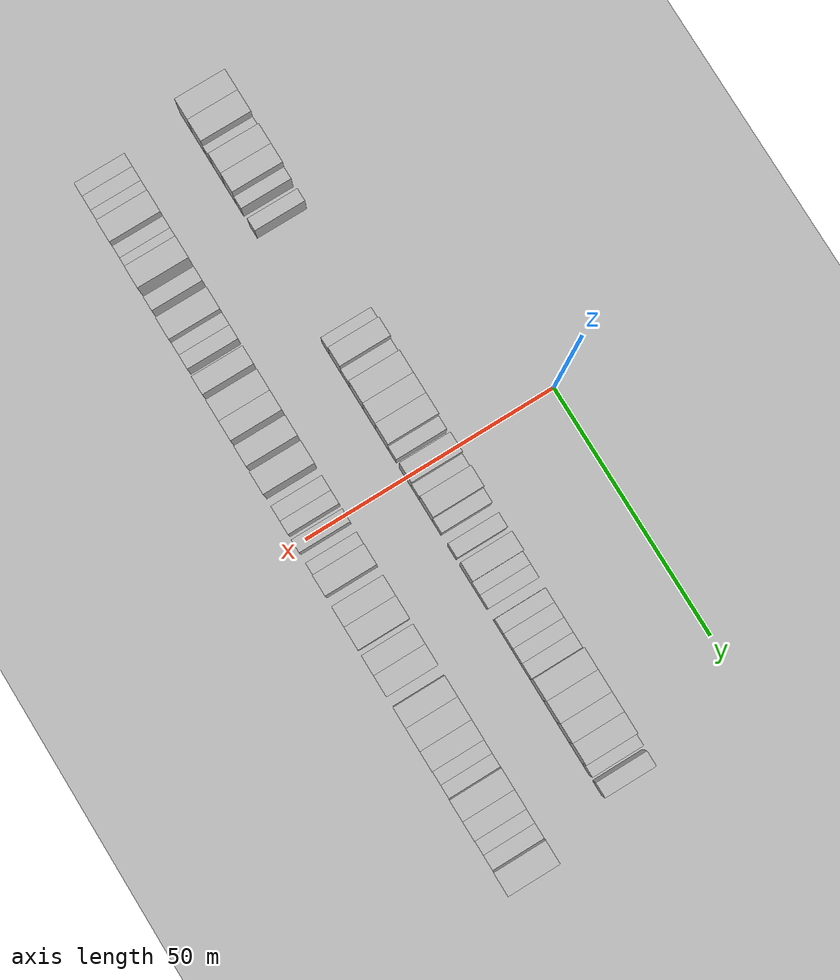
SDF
<sdf version="1.6">
 <world name="default">
  <include><name>ground_plane_1</name><uri>model://HANNAS_ground_plane</uri></include>
  <include>
   <name>ground_plane_2</name>
   <uri>model://HANNAS_ground_plane</uri>
   <pose>100 0 0  0 0 0</pose>
  </include>
  <model name="building_33">
   <static>1</static>
   <pose>25.0000 -72.8409 0 0.000000 0.000000 0.000000</pose>
   <link name="link">
    <pose>0 0 4.50 0 0 0</pose>
    <collision name="collision"><geometry><box><size>10.0000 4.2428 9.0000</size></box></geometry></collision>
    <visual name="visual">
     <cast_shadows>0</cast_shadows>
     <geometry><box><size>10.0000 4.2428 9.0000</size></box></geometry>
     <material>
      <script>
       <uri>model://HANNAS_wall/materials/scripts</uri>
       <uri>model://HANNAS_wall/materials/textures</uri>
       <name>vrc/HANNAS_wall</name>
      </script>
     </material>
    </visual>
   </link>
  </model>
  <model name="building_34">
   <static>1</static>
   <pose>25.0000 -68.4994 0 0.000000 0.000000 0.000000</pose>
   <link name="link">
    <pose>0 0 4.50 0 0 0</pose>
    <collision name="collision"><geometry><box><size>10.0000 4.4401 9.0000</size></box></geometry></collision>
    <visual name="visual">
     <cast_shadows>0</cast_shadows>
     <geometry><box><size>10.0000 4.4401 9.0000</size></box></geometry>
     <material>
      <script>
       <uri>model://HANNAS_wall/materials/scripts</uri>
       <uri>model://HANNAS_wall/materials/textures</uri>
       <name>vrc/HANNAS_wall</name>
      </script>
     </material>
    </visual>
   </link>
  </model>
  <model name="building_35">
   <static>1</static>
   <pose>25.0000 -65.0476 0 0.000000 0.000000 0.000000</pose>
   <link name="link">
    <pose>0 0 3.00 0 0 0</pose>
    <collision name="collision"><geometry><box><size>10.0000 2.4635 6.0000</size></box></geometry></collision>
    <visual name="visual">
     <cast_shadows>0</cast_shadows>
     <geometry><box><size>10.0000 2.4635 6.0000</size></box></geometry>
     <material>
      <script>
       <uri>model://HANNAS_wall/materials/scripts</uri>
       <uri>model://HANNAS_wall/materials/textures</uri>
       <name>vrc/HANNAS_wall</name>
      </script>
     </material>
    </visual>
   </link>
  </model>
  <model name="building_36">
   <static>1</static>
   <pose>25.0000 -61.7955 0 0.000000 0.000000 0.000000</pose>
   <link name="link">
    <pose>0 0 4.50 0 0 0</pose>
    <collision name="collision"><geometry><box><size>10.0000 4.0407 9.0000</size></box></geometry></collision>
    <visual name="visual">
     <cast_shadows>0</cast_shadows>
     <geometry><box><size>10.0000 4.0407 9.0000</size></box></geometry>
     <material>
      <script>
       <uri>model://HANNAS_wall/materials/scripts</uri>
       <uri>model://HANNAS_wall/materials/textures</uri>
       <name>vrc/HANNAS_wall</name>
      </script>
     </material>
    </visual>
   </link>
  </model>
  <model name="building_37">
   <static>1</static>
   <pose>25.0000 -57.8602 0 0.000000 0.000000 0.000000</pose>
   <link name="link">
    <pose>0 0 4.50 0 0 0</pose>
    <collision name="collision"><geometry><box><size>10.0000 3.8299 9.0000</size></box></geometry></collision>
    <visual name="visual">
     <cast_shadows>0</cast_shadows>
     <geometry><box><size>10.0000 3.8299 9.0000</size></box></geometry>
     <material>
      <script>
       <uri>model://HANNAS_wall/materials/scripts</uri>
       <uri>model://HANNAS_wall/materials/textures</uri>
       <name>vrc/HANNAS_wall</name>
      </script>
     </material>
    </visual>
   </link>
  </model>
  <model name="building_38">
   <static>1</static>
   <pose>25.0000 -54.7320 0 0.000000 0.000000 0.000000</pose>
   <link name="link">
    <pose>0 0 3.00 0 0 0</pose>
    <collision name="collision"><geometry><box><size>10.0000 2.4264 6.0000</size></box></geometry></collision>
    <visual name="visual">
     <cast_shadows>0</cast_shadows>
     <geometry><box><size>10.0000 2.4264 6.0000</size></box></geometry>
     <material>
      <script>
       <uri>model://HANNAS_wall/materials/scripts</uri>
       <uri>model://HANNAS_wall/materials/textures</uri>
       <name>vrc/HANNAS_wall</name>
      </script>
     </material>
    </visual>
   </link>
  </model>
  <model name="building_39">
   <static>1</static>
   <pose>25.0000 -50.2527 0 0.000000 0.000000 0.000000</pose>
   <link name="link">
    <pose>0 0 3.00 0 0 0</pose>
    <collision name="collision"><geometry><box><size>10.0000 2.5323 6.0000</size></box></geometry></collision>
    <visual name="visual">
     <cast_shadows>0</cast_shadows>
     <geometry><box><size>10.0000 2.5323 6.0000</size></box></geometry>
     <material>
      <script>
       <uri>model://HANNAS_wall/materials/scripts</uri>
       <uri>model://HANNAS_wall/materials/textures</uri>
       <name>vrc/HANNAS_wall</name>
      </script>
     </material>
    </visual>
   </link>
  </model>
  <model name="building_40">
   <static>1</static>
   <pose>25.0000 -26.1043 0 0.000000 0.000000 0.000000</pose>
   <link name="link">
    <pose>0 0 3.00 0 0 0</pose>
    <collision name="collision"><geometry><box><size>10.0000 2.5882 6.0000</size></box></geometry></collision>
    <visual name="visual">
     <cast_shadows>0</cast_shadows>
     <geometry><box><size>10.0000 2.5882 6.0000</size></box></geometry>
     <material>
      <script>
       <uri>model://HANNAS_wall/materials/scripts</uri>
       <uri>model://HANNAS_wall/materials/textures</uri>
       <name>vrc/HANNAS_wall</name>
      </script>
     </material>
    </visual>
   </link>
  </model>
  <model name="building_41">
   <static>1</static>
   <pose>25.0000 -22.9158 0 0.000000 0.000000 0.000000</pose>
   <link name="link">
    <pose>0 0 4.50 0 0 0</pose>
    <collision name="collision"><geometry><box><size>10.0000 3.7887 9.0000</size></box></geometry></collision>
    <visual name="visual">
     <cast_shadows>0</cast_shadows>
     <geometry><box><size>10.0000 3.7887 9.0000</size></box></geometry>
     <material>
      <script>
       <uri>model://HANNAS_wall/materials/scripts</uri>
       <uri>model://HANNAS_wall/materials/textures</uri>
       <name>vrc/HANNAS_wall</name>
      </script>
     </material>
    </visual>
   </link>
  </model>
  <model name="building_42">
   <static>1</static>
   <pose>25.0000 -19.5918 0 0.000000 0.000000 0.000000</pose>
   <link name="link">
    <pose>0 0 3.00 0 0 0</pose>
    <collision name="collision"><geometry><box><size>10.0000 2.8595 6.0000</size></box></geometry></collision>
    <visual name="visual">
     <cast_shadows>0</cast_shadows>
     <geometry><box><size>10.0000 2.8595 6.0000</size></box></geometry>
     <material>
      <script>
       <uri>model://HANNAS_wall/materials/scripts</uri>
       <uri>model://HANNAS_wall/materials/textures</uri>
       <name>vrc/HANNAS_wall</name>
      </script>
     </material>
    </visual>
   </link>
  </model>
  <model name="building_43">
   <static>1</static>
   <pose>25.0000 -15.9503 0 0.000000 0.000000 0.000000</pose>
   <link name="link">
    <pose>0 0 4.50 0 0 0</pose>
    <collision name="collision"><geometry><box><size>10.0000 4.4235 9.0000</size></box></geometry></collision>
    <visual name="visual">
     <cast_shadows>0</cast_shadows>
     <geometry><box><size>10.0000 4.4235 9.0000</size></box></geometry>
     <material>
      <script>
       <uri>model://HANNAS_wall/materials/scripts</uri>
       <uri>model://HANNAS_wall/materials/textures</uri>
       <name>vrc/HANNAS_wall</name>
      </script>
     </material>
    </visual>
   </link>
  </model>
  <model name="building_44">
   <static>1</static>
   <pose>25.0000 -11.7266 0 0.000000 0.000000 0.000000</pose>
   <link name="link">
    <pose>0 0 4.50 0 0 0</pose>
    <collision name="collision"><geometry><box><size>10.0000 4.0238 9.0000</size></box></geometry></collision>
    <visual name="visual">
     <cast_shadows>0</cast_shadows>
     <geometry><box><size>10.0000 4.0238 9.0000</size></box></geometry>
     <material>
      <script>
       <uri>model://HANNAS_wall/materials/scripts</uri>
       <uri>model://HANNAS_wall/materials/textures</uri>
       <name>vrc/HANNAS_wall</name>
      </script>
     </material>
    </visual>
   </link>
  </model>
  <model name="building_45">
   <static>1</static>
   <pose>25.0000 -7.6589 0 0.000000 0.000000 0.000000</pose>
   <link name="link">
    <pose>0 0 4.50 0 0 0</pose>
    <collision name="collision"><geometry><box><size>10.0000 4.1117 9.0000</size></box></geometry></collision>
    <visual name="visual">
     <cast_shadows>0</cast_shadows>
     <geometry><box><size>10.0000 4.1117 9.0000</size></box></geometry>
     <material>
      <script>
       <uri>model://HANNAS_wall/materials/scripts</uri>
       <uri>model://HANNAS_wall/materials/textures</uri>
       <name>vrc/HANNAS_wall</name>
      </script>
     </material>
    </visual>
   </link>
  </model>
  <model name="building_46">
   <static>1</static>
   <pose>25.0000 -4.2922 0 0.000000 0.000000 0.000000</pose>
   <link name="link">
    <pose>0 0 3.00 0 0 0</pose>
    <collision name="collision"><geometry><box><size>10.0000 2.6216 6.0000</size></box></geometry></collision>
    <visual name="visual">
     <cast_shadows>0</cast_shadows>
     <geometry><box><size>10.0000 2.6216 6.0000</size></box></geometry>
     <material>
      <script>
       <uri>model://HANNAS_wall/materials/scripts</uri>
       <uri>model://HANNAS_wall/materials/textures</uri>
       <name>vrc/HANNAS_wall</name>
      </script>
     </material>
    </visual>
   </link>
  </model>
  <model name="building_47">
   <static>1</static>
   <pose>25.0000 -0.0352 0 0.000000 0.000000 0.000000</pose>
   <link name="link">
    <pose>0 0 4.50 0 0 0</pose>
    <collision name="collision"><geometry><box><size>10.0000 3.8925 9.0000</size></box></geometry></collision>
    <visual name="visual">
     <cast_shadows>0</cast_shadows>
     <geometry><box><size>10.0000 3.8925 9.0000</size></box></geometry>
     <material>
      <script>
       <uri>model://HANNAS_wall/materials/scripts</uri>
       <uri>model://HANNAS_wall/materials/textures</uri>
       <name>vrc/HANNAS_wall</name>
      </script>
     </material>
    </visual>
   </link>
  </model>
  <model name="building_48">
   <static>1</static>
   <pose>25.0000 3.2444 0 0.000000 0.000000 0.000000</pose>
   <link name="link">
    <pose>0 0 3.00 0 0 0</pose>
    <collision name="collision"><geometry><box><size>10.0000 2.6667 6.0000</size></box></geometry></collision>
    <visual name="visual">
     <cast_shadows>0</cast_shadows>
     <geometry><box><size>10.0000 2.6667 6.0000</size></box></geometry>
     <material>
      <script>
       <uri>model://HANNAS_wall/materials/scripts</uri>
       <uri>model://HANNAS_wall/materials/textures</uri>
       <name>vrc/HANNAS_wall</name>
      </script>
     </material>
    </visual>
   </link>
  </model>
  <model name="building_49">
   <static>1</static>
   <pose>25.0000 6.6460 0 0.000000 0.000000 0.000000</pose>
   <link name="link">
    <pose>0 0 4.50 0 0 0</pose>
    <collision name="collision"><geometry><box><size>10.0000 4.1365 9.0000</size></box></geometry></collision>
    <visual name="visual">
     <cast_shadows>0</cast_shadows>
     <geometry><box><size>10.0000 4.1365 9.0000</size></box></geometry>
     <material>
      <script>
       <uri>model://HANNAS_wall/materials/scripts</uri>
       <uri>model://HANNAS_wall/materials/textures</uri>
       <name>vrc/HANNAS_wall</name>
      </script>
     </material>
    </visual>
   </link>
  </model>
  <model name="building_50">
   <static>1</static>
   <pose>25.0000 10.1322 0 0.000000 0.000000 0.000000</pose>
   <link name="link">
    <pose>0 0 3.00 0 0 0</pose>
    <collision name="collision"><geometry><box><size>10.0000 2.8359 6.0000</size></box></geometry></collision>
    <visual name="visual">
     <cast_shadows>0</cast_shadows>
     <geometry><box><size>10.0000 2.8359 6.0000</size></box></geometry>
     <material>
      <script>
       <uri>model://HANNAS_wall/materials/scripts</uri>
       <uri>model://HANNAS_wall/materials/textures</uri>
       <name>vrc/HANNAS_wall</name>
      </script>
     </material>
    </visual>
   </link>
  </model>
  <model name="building_51">
   <static>1</static>
   <pose>25.0000 14.9965 0 0.000000 0.000000 0.000000</pose>
   <link name="link">
    <pose>0 0 3.00 0 0 0</pose>
    <collision name="collision"><geometry><box><size>10.0000 2.8928 6.0000</size></box></geometry></collision>
    <visual name="visual">
     <cast_shadows>0</cast_shadows>
     <geometry><box><size>10.0000 2.8928 6.0000</size></box></geometry>
     <material>
      <script>
       <uri>model://HANNAS_wall/materials/scripts</uri>
       <uri>model://HANNAS_wall/materials/textures</uri>
       <name>vrc/HANNAS_wall</name>
      </script>
     </material>
    </visual>
   </link>
  </model>
  <model name="building_52">
   <static>1</static>
   <pose>25.0000 19.3135 0 0.000000 0.000000 0.000000</pose>
   <link name="link">
    <pose>0 0 4.50 0 0 0</pose>
    <collision name="collision"><geometry><box><size>10.0000 3.7412 9.0000</size></box></geometry></collision>
    <visual name="visual">
     <cast_shadows>0</cast_shadows>
     <geometry><box><size>10.0000 3.7412 9.0000</size></box></geometry>
     <material>
      <script>
       <uri>model://HANNAS_wall/materials/scripts</uri>
       <uri>model://HANNAS_wall/materials/textures</uri>
       <name>vrc/HANNAS_wall</name>
      </script>
     </material>
    </visual>
   </link>
  </model>
  <model name="building_53">
   <static>1</static>
   <pose>25.0000 22.4335 0 0.000000 0.000000 0.000000</pose>
   <link name="link">
    <pose>0 0 3.00 0 0 0</pose>
    <collision name="collision"><geometry><box><size>10.0000 2.4987 6.0000</size></box></geometry></collision>
    <visual name="visual">
     <cast_shadows>0</cast_shadows>
     <geometry><box><size>10.0000 2.4987 6.0000</size></box></geometry>
     <material>
      <script>
       <uri>model://HANNAS_wall/materials/scripts</uri>
       <uri>model://HANNAS_wall/materials/textures</uri>
       <name>vrc/HANNAS_wall</name>
      </script>
     </material>
    </visual>
   </link>
  </model>
  <model name="building_54">
   <static>1</static>
   <pose>25.0000 25.0154 0 0.000000 0.000000 0.000000</pose>
   <link name="link">
    <pose>0 0 3.00 0 0 0</pose>
    <collision name="collision"><geometry><box><size>10.0000 2.6651 6.0000</size></box></geometry></collision>
    <visual name="visual">
     <cast_shadows>0</cast_shadows>
     <geometry><box><size>10.0000 2.6651 6.0000</size></box></geometry>
     <material>
      <script>
       <uri>model://HANNAS_wall/materials/scripts</uri>
       <uri>model://HANNAS_wall/materials/textures</uri>
       <name>vrc/HANNAS_wall</name>
      </script>
     </material>
    </visual>
   </link>
  </model>
  <model name="building_55">
   <static>1</static>
   <pose>25.0000 29.7597 0 0.000000 0.000000 0.000000</pose>
   <link name="link">
    <pose>0 0 3.00 0 0 0</pose>
    <collision name="collision"><geometry><box><size>10.0000 2.8235 6.0000</size></box></geometry></collision>
    <visual name="visual">
     <cast_shadows>0</cast_shadows>
     <geometry><box><size>10.0000 2.8235 6.0000</size></box></geometry>
     <material>
      <script>
       <uri>model://HANNAS_wall/materials/scripts</uri>
       <uri>model://HANNAS_wall/materials/textures</uri>
       <name>vrc/HANNAS_wall</name>
      </script>
     </material>
    </visual>
   </link>
  </model>
  <model name="building_56">
   <static>1</static>
   <pose>25.0000 32.6455 0 0.000000 0.000000 0.000000</pose>
   <link name="link">
    <pose>0 0 3.00 0 0 0</pose>
    <collision name="collision"><geometry><box><size>10.0000 2.9481 6.0000</size></box></geometry></collision>
    <visual name="visual">
     <cast_shadows>0</cast_shadows>
     <geometry><box><size>10.0000 2.9481 6.0000</size></box></geometry>
     <material>
      <script>
       <uri>model://HANNAS_wall/materials/scripts</uri>
       <uri>model://HANNAS_wall/materials/textures</uri>
       <name>vrc/HANNAS_wall</name>
      </script>
     </material>
    </visual>
   </link>
  </model>
  <model name="building_57">
   <static>1</static>
   <pose>25.0000 35.5581 0 0.000000 0.000000 0.000000</pose>
   <link name="link">
    <pose>0 0 3.00 0 0 0</pose>
    <collision name="collision"><geometry><box><size>10.0000 2.8771 6.0000</size></box></geometry></collision>
    <visual name="visual">
     <cast_shadows>0</cast_shadows>
     <geometry><box><size>10.0000 2.8771 6.0000</size></box></geometry>
     <material>
      <script>
       <uri>model://HANNAS_wall/materials/scripts</uri>
       <uri>model://HANNAS_wall/materials/textures</uri>
       <name>vrc/HANNAS_wall</name>
      </script>
     </material>
    </visual>
   </link>
  </model>
  <model name="building_58">
   <static>1</static>
   <pose>25.0000 38.4874 0 0.000000 0.000000 0.000000</pose>
   <link name="link">
    <pose>0 0 3.00 0 0 0</pose>
    <collision name="collision"><geometry><box><size>10.0000 2.9816 6.0000</size></box></geometry></collision>
    <visual name="visual">
     <cast_shadows>0</cast_shadows>
     <geometry><box><size>10.0000 2.9816 6.0000</size></box></geometry>
     <material>
      <script>
       <uri>model://HANNAS_wall/materials/scripts</uri>
       <uri>model://HANNAS_wall/materials/textures</uri>
       <name>vrc/HANNAS_wall</name>
      </script>
     </material>
    </visual>
   </link>
  </model>
  <model name="building_59">
   <static>1</static>
   <pose>25.0000 42.0913 0 0.000000 0.000000 0.000000</pose>
   <link name="link">
    <pose>0 0 4.50 0 0 0</pose>
    <collision name="collision"><geometry><box><size>10.0000 4.2262 9.0000</size></box></geometry></collision>
    <visual name="visual">
     <cast_shadows>0</cast_shadows>
     <geometry><box><size>10.0000 4.2262 9.0000</size></box></geometry>
     <material>
      <script>
       <uri>model://HANNAS_wall/materials/scripts</uri>
       <uri>model://HANNAS_wall/materials/textures</uri>
       <name>vrc/HANNAS_wall</name>
      </script>
     </material>
    </visual>
   </link>
  </model>
  <model name="building_60">
   <static>1</static>
   <pose>25.0000 46.3436 0 0.000000 0.000000 0.000000</pose>
   <link name="link">
    <pose>0 0 4.50 0 0 0</pose>
    <collision name="collision"><geometry><box><size>10.0000 4.2783 9.0000</size></box></geometry></collision>
    <visual name="visual">
     <cast_shadows>0</cast_shadows>
     <geometry><box><size>10.0000 4.2783 9.0000</size></box></geometry>
     <material>
      <script>
       <uri>model://HANNAS_wall/materials/scripts</uri>
       <uri>model://HANNAS_wall/materials/textures</uri>
       <name>vrc/HANNAS_wall</name>
      </script>
     </material>
    </visual>
   </link>
  </model>
  <model name="building_61">
   <static>1</static>
   <pose>25.0000 50.3788 0 0.000000 0.000000 0.000000</pose>
   <link name="link">
    <pose>0 0 4.50 0 0 0</pose>
    <collision name="collision"><geometry><box><size>10.0000 3.7922 9.0000</size></box></geometry></collision>
    <visual name="visual">
     <cast_shadows>0</cast_shadows>
     <geometry><box><size>10.0000 3.7922 9.0000</size></box></geometry>
     <material>
      <script>
       <uri>model://HANNAS_wall/materials/scripts</uri>
       <uri>model://HANNAS_wall/materials/textures</uri>
       <name>vrc/HANNAS_wall</name>
      </script>
     </material>
    </visual>
   </link>
  </model>
  <model name="building_62">
   <static>1</static>
   <pose>25.0000 54.3548 0 0.000000 0.000000 0.000000</pose>
   <link name="link">
    <pose>0 0 4.50 0 0 0</pose>
    <collision name="collision"><geometry><box><size>10.0000 4.1597 9.0000</size></box></geometry></collision>
    <visual name="visual">
     <cast_shadows>0</cast_shadows>
     <geometry><box><size>10.0000 4.1597 9.0000</size></box></geometry>
     <material>
      <script>
       <uri>model://HANNAS_wall/materials/scripts</uri>
       <uri>model://HANNAS_wall/materials/textures</uri>
       <name>vrc/HANNAS_wall</name>
      </script>
     </material>
    </visual>
   </link>
  </model>
  <model name="building_63">
   <static>1</static>
   <pose>25.0000 57.6877 0 0.000000 0.000000 0.000000</pose>
   <link name="link">
    <pose>0 0 3.00 0 0 0</pose>
    <collision name="collision"><geometry><box><size>10.0000 2.5062 6.0000</size></box></geometry></collision>
    <visual name="visual">
     <cast_shadows>0</cast_shadows>
     <geometry><box><size>10.0000 2.5062 6.0000</size></box></geometry>
     <material>
      <script>
       <uri>model://HANNAS_wall/materials/scripts</uri>
       <uri>model://HANNAS_wall/materials/textures</uri>
       <name>vrc/HANNAS_wall</name>
      </script>
     </material>
    </visual>
   </link>
  </model>
  <model name="building_64">
   <static>1</static>
   <pose>25.0000 61.4078 0 0.000000 0.000000 0.000000</pose>
   <link name="link">
    <pose>0 0 3.00 0 0 0</pose>
    <collision name="collision"><geometry><box><size>10.0000 2.9340 6.0000</size></box></geometry></collision>
    <visual name="visual">
     <cast_shadows>0</cast_shadows>
     <geometry><box><size>10.0000 2.9340 6.0000</size></box></geometry>
     <material>
      <script>
       <uri>model://HANNAS_wall/materials/scripts</uri>
       <uri>model://HANNAS_wall/materials/textures</uri>
       <name>vrc/HANNAS_wall</name>
      </script>
     </material>
    </visual>
   </link>
  </model>
  <model name="building_133">
   <static>1</static>
   <pose>47.0000 -70.9129 0 0.000000 0.000000 0.000000</pose>
   <link name="link">
    <pose>0 0 3.00 0 0 0</pose>
    <collision name="collision"><geometry><box><size>10.0000 2.6799 6.0000</size></box></geometry></collision>
    <visual name="visual">
     <cast_shadows>0</cast_shadows>
     <geometry><box><size>10.0000 2.6799 6.0000</size></box></geometry>
     <material>
      <script>
       <uri>model://HANNAS_wall/materials/scripts</uri>
       <uri>model://HANNAS_wall/materials/textures</uri>
       <name>vrc/HANNAS_wall</name>
      </script>
     </material>
    </visual>
   </link>
  </model>
  <model name="building_134">
   <static>1</static>
   <pose>47.0000 -68.1434 0 0.000000 0.000000 0.000000</pose>
   <link name="link">
    <pose>0 0 3.00 0 0 0</pose>
    <collision name="collision"><geometry><box><size>10.0000 2.8591 6.0000</size></box></geometry></collision>
    <visual name="visual">
     <cast_shadows>0</cast_shadows>
     <geometry><box><size>10.0000 2.8591 6.0000</size></box></geometry>
     <material>
      <script>
       <uri>model://HANNAS_wall/materials/scripts</uri>
       <uri>model://HANNAS_wall/materials/textures</uri>
       <name>vrc/HANNAS_wall</name>
      </script>
     </material>
    </visual>
   </link>
  </model>
  <model name="building_135">
   <static>1</static>
   <pose>47.0000 -65.2637 0 0.000000 0.000000 0.000000</pose>
   <link name="link">
    <pose>0 0 3.00 0 0 0</pose>
    <collision name="collision"><geometry><box><size>10.0000 2.9001 6.0000</size></box></geometry></collision>
    <visual name="visual">
     <cast_shadows>0</cast_shadows>
     <geometry><box><size>10.0000 2.9001 6.0000</size></box></geometry>
     <material>
      <script>
       <uri>model://HANNAS_wall/materials/scripts</uri>
       <uri>model://HANNAS_wall/materials/textures</uri>
       <name>vrc/HANNAS_wall</name>
      </script>
     </material>
    </visual>
   </link>
  </model>
  <model name="building_136">
   <static>1</static>
   <pose>47.0000 -61.6142 0 0.000000 0.000000 0.000000</pose>
   <link name="link">
    <pose>0 0 4.50 0 0 0</pose>
    <collision name="collision"><geometry><box><size>10.0000 4.3991 9.0000</size></box></geometry></collision>
    <visual name="visual">
     <cast_shadows>0</cast_shadows>
     <geometry><box><size>10.0000 4.3991 9.0000</size></box></geometry>
     <material>
      <script>
       <uri>model://HANNAS_wall/materials/scripts</uri>
       <uri>model://HANNAS_wall/materials/textures</uri>
       <name>vrc/HANNAS_wall</name>
      </script>
     </material>
    </visual>
   </link>
  </model>
  <model name="building_137">
   <static>1</static>
   <pose>47.0000 -58.2076 0 0.000000 0.000000 0.000000</pose>
   <link name="link">
    <pose>0 0 3.00 0 0 0</pose>
    <collision name="collision"><geometry><box><size>10.0000 2.4141 6.0000</size></box></geometry></collision>
    <visual name="visual">
     <cast_shadows>0</cast_shadows>
     <geometry><box><size>10.0000 2.4141 6.0000</size></box></geometry>
     <material>
      <script>
       <uri>model://HANNAS_wall/materials/scripts</uri>
       <uri>model://HANNAS_wall/materials/textures</uri>
       <name>vrc/HANNAS_wall</name>
      </script>
     </material>
    </visual>
   </link>
  </model>
  <model name="building_138">
   <static>1</static>
   <pose>47.0000 -55.7584 0 0.000000 0.000000 0.000000</pose>
   <link name="link">
    <pose>0 0 3.00 0 0 0</pose>
    <collision name="collision"><geometry><box><size>10.0000 2.4842 6.0000</size></box></geometry></collision>
    <visual name="visual">
     <cast_shadows>0</cast_shadows>
     <geometry><box><size>10.0000 2.4842 6.0000</size></box></geometry>
     <material>
      <script>
       <uri>model://HANNAS_wall/materials/scripts</uri>
       <uri>model://HANNAS_wall/materials/textures</uri>
       <name>vrc/HANNAS_wall</name>
      </script>
     </material>
    </visual>
   </link>
  </model>
  <model name="building_139">
   <static>1</static>
   <pose>47.0000 -52.3385 0 0.000000 0.000000 0.000000</pose>
   <link name="link">
    <pose>0 0 4.50 0 0 0</pose>
    <collision name="collision"><geometry><box><size>10.0000 4.3556 9.0000</size></box></geometry></collision>
    <visual name="visual">
     <cast_shadows>0</cast_shadows>
     <geometry><box><size>10.0000 4.3556 9.0000</size></box></geometry>
     <material>
      <script>
       <uri>model://HANNAS_wall/materials/scripts</uri>
       <uri>model://HANNAS_wall/materials/textures</uri>
       <name>vrc/HANNAS_wall</name>
      </script>
     </material>
    </visual>
   </link>
  </model>
  <model name="building_140">
   <static>1</static>
   <pose>47.0000 -47.7316 0 0.000000 0.000000 0.000000</pose>
   <link name="link">
    <pose>0 0 3.00 0 0 0</pose>
    <collision name="collision"><geometry><box><size>10.0000 2.8581 6.0000</size></box></geometry></collision>
    <visual name="visual">
     <cast_shadows>0</cast_shadows>
     <geometry><box><size>10.0000 2.8581 6.0000</size></box></geometry>
     <material>
      <script>
       <uri>model://HANNAS_wall/materials/scripts</uri>
       <uri>model://HANNAS_wall/materials/textures</uri>
       <name>vrc/HANNAS_wall</name>
      </script>
     </material>
    </visual>
   </link>
  </model>
  <model name="building_141">
   <static>1</static>
   <pose>47.0000 -42.0891 0 0.000000 0.000000 0.000000</pose>
   <link name="link">
    <pose>0 0 4.50 0 0 0</pose>
    <collision name="collision"><geometry><box><size>10.0000 4.4270 9.0000</size></box></geometry></collision>
    <visual name="visual">
     <cast_shadows>0</cast_shadows>
     <geometry><box><size>10.0000 4.4270 9.0000</size></box></geometry>
     <material>
      <script>
       <uri>model://HANNAS_wall/materials/scripts</uri>
       <uri>model://HANNAS_wall/materials/textures</uri>
       <name>vrc/HANNAS_wall</name>
      </script>
     </material>
    </visual>
   </link>
  </model>
  <model name="building_142">
   <static>1</static>
   <pose>47.0000 -38.6186 0 0.000000 0.000000 0.000000</pose>
   <link name="link">
    <pose>0 0 3.00 0 0 0</pose>
    <collision name="collision"><geometry><box><size>10.0000 2.5139 6.0000</size></box></geometry></collision>
    <visual name="visual">
     <cast_shadows>0</cast_shadows>
     <geometry><box><size>10.0000 2.5139 6.0000</size></box></geometry>
     <material>
      <script>
       <uri>model://HANNAS_wall/materials/scripts</uri>
       <uri>model://HANNAS_wall/materials/textures</uri>
       <name>vrc/HANNAS_wall</name>
      </script>
     </material>
    </visual>
   </link>
  </model>
  <model name="building_143">
   <static>1</static>
   <pose>47.0000 -35.9536 0 0.000000 0.000000 0.000000</pose>
   <link name="link">
    <pose>0 0 3.00 0 0 0</pose>
    <collision name="collision"><geometry><box><size>10.0000 2.8161 6.0000</size></box></geometry></collision>
    <visual name="visual">
     <cast_shadows>0</cast_shadows>
     <geometry><box><size>10.0000 2.8161 6.0000</size></box></geometry>
     <material>
      <script>
       <uri>model://HANNAS_wall/materials/scripts</uri>
       <uri>model://HANNAS_wall/materials/textures</uri>
       <name>vrc/HANNAS_wall</name>
      </script>
     </material>
    </visual>
   </link>
  </model>
  <model name="building_144">
   <static>1</static>
   <pose>47.0000 -30.7369 0 0.000000 0.000000 0.000000</pose>
   <link name="link">
    <pose>0 0 4.50 0 0 0</pose>
    <collision name="collision"><geometry><box><size>10.0000 3.6171 9.0000</size></box></geometry></collision>
    <visual name="visual">
     <cast_shadows>0</cast_shadows>
     <geometry><box><size>10.0000 3.6171 9.0000</size></box></geometry>
     <material>
      <script>
       <uri>model://HANNAS_wall/materials/scripts</uri>
       <uri>model://HANNAS_wall/materials/textures</uri>
       <name>vrc/HANNAS_wall</name>
      </script>
     </material>
    </visual>
   </link>
  </model>
  <model name="building_145">
   <static>1</static>
   <pose>47.0000 -25.8213 0 0.000000 0.000000 0.000000</pose>
   <link name="link">
    <pose>0 0 4.50 0 0 0</pose>
    <collision name="collision"><geometry><box><size>10.0000 4.2142 9.0000</size></box></geometry></collision>
    <visual name="visual">
     <cast_shadows>0</cast_shadows>
     <geometry><box><size>10.0000 4.2142 9.0000</size></box></geometry>
     <material>
      <script>
       <uri>model://HANNAS_wall/materials/scripts</uri>
       <uri>model://HANNAS_wall/materials/textures</uri>
       <name>vrc/HANNAS_wall</name>
      </script>
     </material>
    </visual>
   </link>
  </model>
  <model name="building_146">
   <static>1</static>
   <pose>47.0000 -21.7636 0 0.000000 0.000000 0.000000</pose>
   <link name="link">
    <pose>0 0 4.50 0 0 0</pose>
    <collision name="collision"><geometry><box><size>10.0000 3.9011 9.0000</size></box></geometry></collision>
    <visual name="visual">
     <cast_shadows>0</cast_shadows>
     <geometry><box><size>10.0000 3.9011 9.0000</size></box></geometry>
     <material>
      <script>
       <uri>model://HANNAS_wall/materials/scripts</uri>
       <uri>model://HANNAS_wall/materials/textures</uri>
       <name>vrc/HANNAS_wall</name>
      </script>
     </material>
    </visual>
   </link>
  </model>
  <model name="building_147">
   <static>1</static>
   <pose>47.0000 -16.7980 0 0.000000 0.000000 0.000000</pose>
   <link name="link">
    <pose>0 0 4.50 0 0 0</pose>
    <collision name="collision"><geometry><box><size>10.0000 4.0302 9.0000</size></box></geometry></collision>
    <visual name="visual">
     <cast_shadows>0</cast_shadows>
     <geometry><box><size>10.0000 4.0302 9.0000</size></box></geometry>
     <material>
      <script>
       <uri>model://HANNAS_wall/materials/scripts</uri>
       <uri>model://HANNAS_wall/materials/textures</uri>
       <name>vrc/HANNAS_wall</name>
      </script>
     </material>
    </visual>
   </link>
  </model>
  <model name="building_148">
   <static>1</static>
   <pose>47.0000 -11.5449 0 0.000000 0.000000 0.000000</pose>
   <link name="link">
    <pose>0 0 4.50 0 0 0</pose>
    <collision name="collision"><geometry><box><size>10.0000 4.4760 9.0000</size></box></geometry></collision>
    <visual name="visual">
     <cast_shadows>0</cast_shadows>
     <geometry><box><size>10.0000 4.4760 9.0000</size></box></geometry>
     <material>
      <script>
       <uri>model://HANNAS_wall/materials/scripts</uri>
       <uri>model://HANNAS_wall/materials/textures</uri>
       <name>vrc/HANNAS_wall</name>
      </script>
     </material>
    </visual>
   </link>
  </model>
  <model name="building_149">
   <static>1</static>
   <pose>47.0000 -5.8322 0 0.000000 0.000000 0.000000</pose>
   <link name="link">
    <pose>0 0 3.00 0 0 0</pose>
    <collision name="collision"><geometry><box><size>10.0000 2.9495 6.0000</size></box></geometry></collision>
    <visual name="visual">
     <cast_shadows>0</cast_shadows>
     <geometry><box><size>10.0000 2.9495 6.0000</size></box></geometry>
     <material>
      <script>
       <uri>model://HANNAS_wall/materials/scripts</uri>
       <uri>model://HANNAS_wall/materials/textures</uri>
       <name>vrc/HANNAS_wall</name>
      </script>
     </material>
    </visual>
   </link>
  </model>
  <model name="building_150">
   <static>1</static>
   <pose>47.0000 -3.0274 0 0.000000 0.000000 0.000000</pose>
   <link name="link">
    <pose>0 0 3.00 0 0 0</pose>
    <collision name="collision"><geometry><box><size>10.0000 2.6599 6.0000</size></box></geometry></collision>
    <visual name="visual">
     <cast_shadows>0</cast_shadows>
     <geometry><box><size>10.0000 2.6599 6.0000</size></box></geometry>
     <material>
      <script>
       <uri>model://HANNAS_wall/materials/scripts</uri>
       <uri>model://HANNAS_wall/materials/textures</uri>
       <name>vrc/HANNAS_wall</name>
      </script>
     </material>
    </visual>
   </link>
  </model>
  <model name="building_151">
   <static>1</static>
   <pose>47.0000 0.5885 0 0.000000 0.000000 0.000000</pose>
   <link name="link">
    <pose>0 0 3.00 0 0 0</pose>
    <collision name="collision"><geometry><box><size>10.0000 2.5720 6.0000</size></box></geometry></collision>
    <visual name="visual">
     <cast_shadows>0</cast_shadows>
     <geometry><box><size>10.0000 2.5720 6.0000</size></box></geometry>
     <material>
      <script>
       <uri>model://HANNAS_wall/materials/scripts</uri>
       <uri>model://HANNAS_wall/materials/textures</uri>
       <name>vrc/HANNAS_wall</name>
      </script>
     </material>
    </visual>
   </link>
  </model>
  <model name="building_152">
   <static>1</static>
   <pose>47.0000 5.1371 0 0.000000 0.000000 0.000000</pose>
   <link name="link">
    <pose>0 0 3.00 0 0 0</pose>
    <collision name="collision"><geometry><box><size>10.0000 2.5252 6.0000</size></box></geometry></collision>
    <visual name="visual">
     <cast_shadows>0</cast_shadows>
     <geometry><box><size>10.0000 2.5252 6.0000</size></box></geometry>
     <material>
      <script>
       <uri>model://HANNAS_wall/materials/scripts</uri>
       <uri>model://HANNAS_wall/materials/textures</uri>
       <name>vrc/HANNAS_wall</name>
      </script>
     </material>
    </visual>
   </link>
  </model>
  <model name="building_153">
   <static>1</static>
   <pose>47.0000 8.4403 0 0.000000 0.000000 0.000000</pose>
   <link name="link">
    <pose>0 0 4.50 0 0 0</pose>
    <collision name="collision"><geometry><box><size>10.0000 4.0810 9.0000</size></box></geometry></collision>
    <visual name="visual">
     <cast_shadows>0</cast_shadows>
     <geometry><box><size>10.0000 4.0810 9.0000</size></box></geometry>
     <material>
      <script>
       <uri>model://HANNAS_wall/materials/scripts</uri>
       <uri>model://HANNAS_wall/materials/textures</uri>
       <name>vrc/HANNAS_wall</name>
      </script>
     </material>
    </visual>
   </link>
  </model>
  <model name="building_154">
   <static>1</static>
   <pose>47.0000 14.4768 0 0.000000 0.000000 0.000000</pose>
   <link name="link">
    <pose>0 0 4.50 0 0 0</pose>
    <collision name="collision"><geometry><box><size>10.0000 3.9920 9.0000</size></box></geometry></collision>
    <visual name="visual">
     <cast_shadows>0</cast_shadows>
     <geometry><box><size>10.0000 3.9920 9.0000</size></box></geometry>
     <material>
      <script>
       <uri>model://HANNAS_wall/materials/scripts</uri>
       <uri>model://HANNAS_wall/materials/textures</uri>
       <name>vrc/HANNAS_wall</name>
      </script>
     </material>
    </visual>
   </link>
  </model>
  <model name="building_155">
   <static>1</static>
   <pose>47.0000 18.6974 0 0.000000 0.000000 0.000000</pose>
   <link name="link">
    <pose>0 0 4.50 0 0 0</pose>
    <collision name="collision"><geometry><box><size>10.0000 4.4494 9.0000</size></box></geometry></collision>
    <visual name="visual">
     <cast_shadows>0</cast_shadows>
     <geometry><box><size>10.0000 4.4494 9.0000</size></box></geometry>
     <material>
      <script>
       <uri>model://HANNAS_wall/materials/scripts</uri>
       <uri>model://HANNAS_wall/materials/textures</uri>
       <name>vrc/HANNAS_wall</name>
      </script>
     </material>
    </visual>
   </link>
  </model>
  <model name="building_156">
   <static>1</static>
   <pose>47.0000 23.8551 0 0.000000 0.000000 0.000000</pose>
   <link name="link">
    <pose>0 0 4.50 0 0 0</pose>
    <collision name="collision"><geometry><box><size>10.0000 3.8658 9.0000</size></box></geometry></collision>
    <visual name="visual">
     <cast_shadows>0</cast_shadows>
     <geometry><box><size>10.0000 3.8658 9.0000</size></box></geometry>
     <material>
      <script>
       <uri>model://HANNAS_wall/materials/scripts</uri>
       <uri>model://HANNAS_wall/materials/textures</uri>
       <name>vrc/HANNAS_wall</name>
      </script>
     </material>
    </visual>
   </link>
  </model>
  <model name="building_157">
   <static>1</static>
   <pose>47.0000 27.8277 0 0.000000 0.000000 0.000000</pose>
   <link name="link">
    <pose>0 0 4.50 0 0 0</pose>
    <collision name="collision"><geometry><box><size>10.0000 4.0795 9.0000</size></box></geometry></collision>
    <visual name="visual">
     <cast_shadows>0</cast_shadows>
     <geometry><box><size>10.0000 4.0795 9.0000</size></box></geometry>
     <material>
      <script>
       <uri>model://HANNAS_wall/materials/scripts</uri>
       <uri>model://HANNAS_wall/materials/textures</uri>
       <name>vrc/HANNAS_wall</name>
      </script>
     </material>
    </visual>
   </link>
  </model>
  <model name="building_158">
   <static>1</static>
   <pose>47.0000 33.8787 0 0.000000 0.000000 0.000000</pose>
   <link name="link">
    <pose>0 0 4.50 0 0 0</pose>
    <collision name="collision"><geometry><box><size>10.0000 4.0225 9.0000</size></box></geometry></collision>
    <visual name="visual">
     <cast_shadows>0</cast_shadows>
     <geometry><box><size>10.0000 4.0225 9.0000</size></box></geometry>
     <material>
      <script>
       <uri>model://HANNAS_wall/materials/scripts</uri>
       <uri>model://HANNAS_wall/materials/textures</uri>
       <name>vrc/HANNAS_wall</name>
      </script>
     </material>
    </visual>
   </link>
  </model>
  <model name="building_159">
   <static>1</static>
   <pose>47.0000 38.0844 0 0.000000 0.000000 0.000000</pose>
   <link name="link">
    <pose>0 0 4.50 0 0 0</pose>
    <collision name="collision"><geometry><box><size>10.0000 4.3890 9.0000</size></box></geometry></collision>
    <visual name="visual">
     <cast_shadows>0</cast_shadows>
     <geometry><box><size>10.0000 4.3890 9.0000</size></box></geometry>
     <material>
      <script>
       <uri>model://HANNAS_wall/materials/scripts</uri>
       <uri>model://HANNAS_wall/materials/textures</uri>
       <name>vrc/HANNAS_wall</name>
      </script>
     </material>
    </visual>
   </link>
  </model>
  <model name="building_160">
   <static>1</static>
   <pose>47.0000 42.1953 0 0.000000 0.000000 0.000000</pose>
   <link name="link">
    <pose>0 0 4.50 0 0 0</pose>
    <collision name="collision"><geometry><box><size>10.0000 3.8328 9.0000</size></box></geometry></collision>
    <visual name="visual">
     <cast_shadows>0</cast_shadows>
     <geometry><box><size>10.0000 3.8328 9.0000</size></box></geometry>
     <material>
      <script>
       <uri>model://HANNAS_wall/materials/scripts</uri>
       <uri>model://HANNAS_wall/materials/textures</uri>
       <name>vrc/HANNAS_wall</name>
      </script>
     </material>
    </visual>
   </link>
  </model>
  <model name="building_161">
   <static>1</static>
   <pose>47.0000 45.5065 0 0.000000 0.000000 0.000000</pose>
   <link name="link">
    <pose>0 0 3.00 0 0 0</pose>
    <collision name="collision"><geometry><box><size>10.0000 2.7898 6.0000</size></box></geometry></collision>
    <visual name="visual">
     <cast_shadows>0</cast_shadows>
     <geometry><box><size>10.0000 2.7898 6.0000</size></box></geometry>
     <material>
      <script>
       <uri>model://HANNAS_wall/materials/scripts</uri>
       <uri>model://HANNAS_wall/materials/textures</uri>
       <name>vrc/HANNAS_wall</name>
      </script>
     </material>
    </visual>
   </link>
  </model>
  <model name="building_162">
   <static>1</static>
   <pose>47.0000 48.1896 0 0.000000 0.000000 0.000000</pose>
   <link name="link">
    <pose>0 0 3.00 0 0 0</pose>
    <collision name="collision"><geometry><box><size>10.0000 2.5764 6.0000</size></box></geometry></collision>
    <visual name="visual">
     <cast_shadows>0</cast_shadows>
     <geometry><box><size>10.0000 2.5764 6.0000</size></box></geometry>
     <material>
      <script>
       <uri>model://HANNAS_wall/materials/scripts</uri>
       <uri>model://HANNAS_wall/materials/textures</uri>
       <name>vrc/HANNAS_wall</name>
      </script>
     </material>
    </visual>
   </link>
  </model>
  <model name="building_163">
   <static>1</static>
   <pose>47.0000 51.5251 0 0.000000 0.000000 0.000000</pose>
   <link name="link">
    <pose>0 0 4.50 0 0 0</pose>
    <collision name="collision"><geometry><box><size>10.0000 4.0945 9.0000</size></box></geometry></collision>
    <visual name="visual">
     <cast_shadows>0</cast_shadows>
     <geometry><box><size>10.0000 4.0945 9.0000</size></box></geometry>
     <material>
      <script>
       <uri>model://HANNAS_wall/materials/scripts</uri>
       <uri>model://HANNAS_wall/materials/textures</uri>
       <name>vrc/HANNAS_wall</name>
      </script>
     </material>
    </visual>
   </link>
  </model>
  <model name="building_164">
   <static>1</static>
   <pose>47.0000 55.4103 0 0.000000 0.000000 0.000000</pose>
   <link name="link">
    <pose>0 0 4.50 0 0 0</pose>
    <collision name="collision"><geometry><box><size>10.0000 3.6759 9.0000</size></box></geometry></collision>
    <visual name="visual">
     <cast_shadows>0</cast_shadows>
     <geometry><box><size>10.0000 3.6759 9.0000</size></box></geometry>
     <material>
      <script>
       <uri>model://HANNAS_wall/materials/scripts</uri>
       <uri>model://HANNAS_wall/materials/textures</uri>
       <name>vrc/HANNAS_wall</name>
      </script>
     </material>
    </visual>
   </link>
  </model>
  <model name="building_165">
   <static>1</static>
   <pose>47.0000 58.7401 0 0.000000 0.000000 0.000000</pose>
   <link name="link">
    <pose>0 0 3.00 0 0 0</pose>
    <collision name="collision"><geometry><box><size>10.0000 2.9837 6.0000</size></box></geometry></collision>
    <visual name="visual">
     <cast_shadows>0</cast_shadows>
     <geometry><box><size>10.0000 2.9837 6.0000</size></box></geometry>
     <material>
      <script>
       <uri>model://HANNAS_wall/materials/scripts</uri>
       <uri>model://HANNAS_wall/materials/textures</uri>
       <name>vrc/HANNAS_wall</name>
      </script>
     </material>
    </visual>
   </link>
  </model>
  <model name="building_166">
   <static>1</static>
   <pose>47.0000 61.6814 0 0.000000 0.000000 0.000000</pose>
   <link name="link">
    <pose>0 0 3.00 0 0 0</pose>
    <collision name="collision"><geometry><box><size>10.0000 2.8990 6.0000</size></box></geometry></collision>
    <visual name="visual">
     <cast_shadows>0</cast_shadows>
     <geometry><box><size>10.0000 2.8990 6.0000</size></box></geometry>
     <material>
      <script>
       <uri>model://HANNAS_wall/materials/scripts</uri>
       <uri>model://HANNAS_wall/materials/textures</uri>
       <name>vrc/HANNAS_wall</name>
      </script>
     </material>
    </visual>
   </link>
  </model>
  <model name="building_167">
   <static>1</static>
   <pose>47.0000 65.3777 0 0.000000 0.000000 0.000000</pose>
   <link name="link">
    <pose>0 0 4.50 0 0 0</pose>
    <collision name="collision"><geometry><box><size>10.0000 4.4936 9.0000</size></box></geometry></collision>
    <visual name="visual">
     <cast_shadows>0</cast_shadows>
     <geometry><box><size>10.0000 4.4936 9.0000</size></box></geometry>
     <material>
      <script>
       <uri>model://HANNAS_wall/materials/scripts</uri>
       <uri>model://HANNAS_wall/materials/textures</uri>
       <name>vrc/HANNAS_wall</name>
      </script>
     </material>
    </visual>
   </link>
  </model>
 </world>
</sdf>
